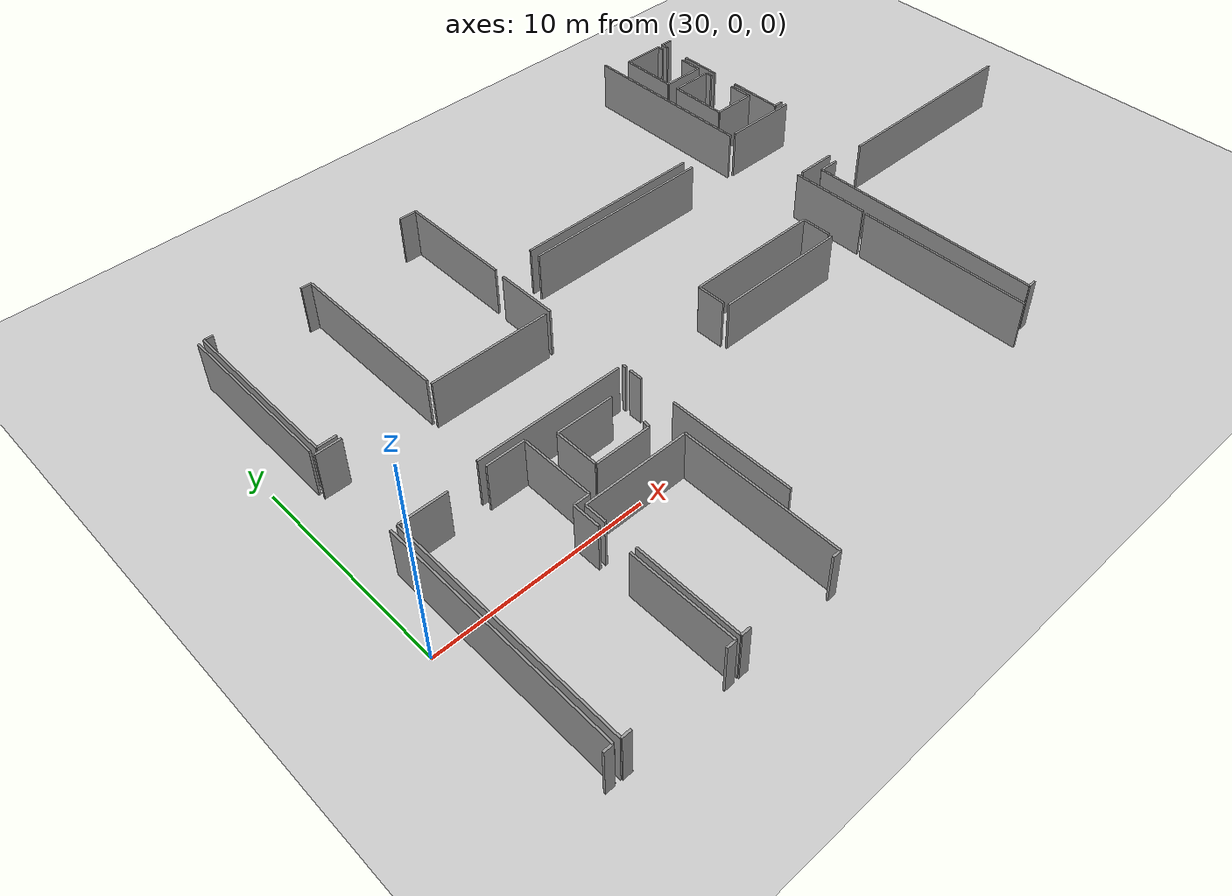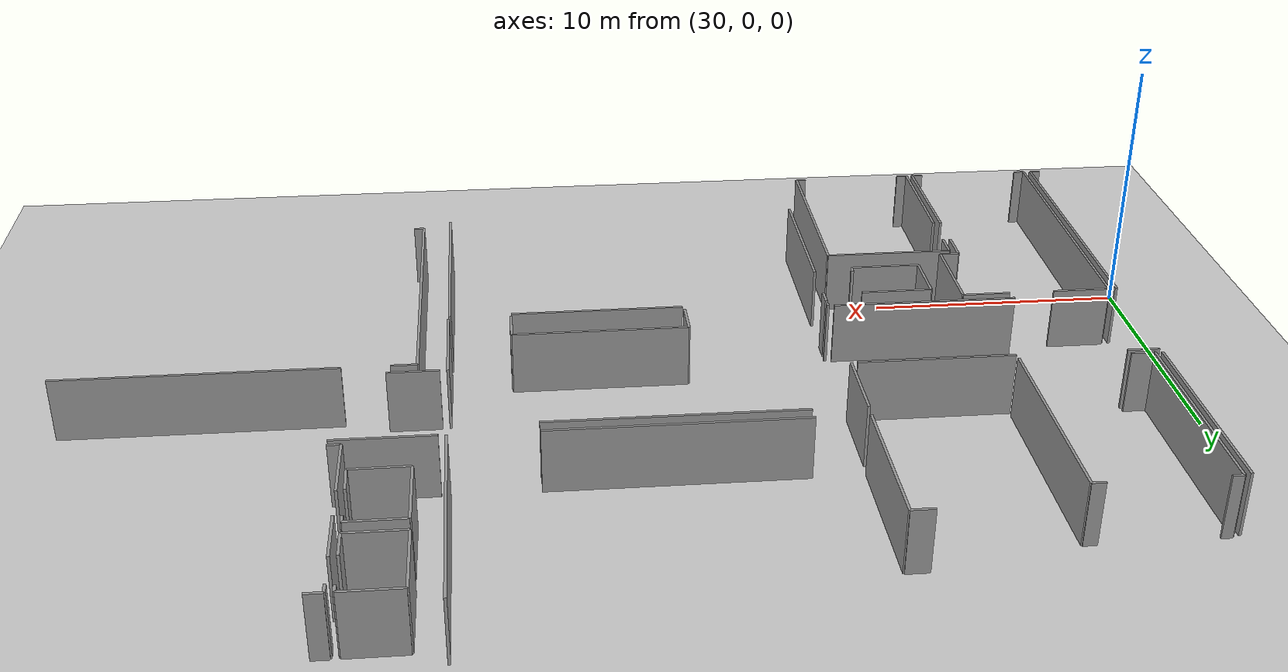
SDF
<sdf version="1.6">
 <world name="default">
  <model name="ground_plane">
   <static>1</static>
   <link name="link">
    <collision name="collision">
     <geometry><plane><normal>0 0 1</normal><size>100 100</size></plane></geometry>
     <surface><friction><ode><mu>100</mu><mu2>50</mu2></ode></friction></surface>
    </collision>
    <visual name="visual">
     <cast_shadows>0</cast_shadows>
     <geometry><plane><normal>0 0 1</normal><size>100 100</size></plane></geometry>
     <material>
      <script><uri>file://media/materials/scripts/gazebo.material</uri><name>Gazebo/Grey</name></script>
     </material>
    </visual>
   </link>
  </model>
  <model name="50037765_PLAN3">
   <static>1</static>
   <link name="Wall_161">
    <collision name="Wall_161_Collision">
     <geometry><box><size>5.92543639472 0.1 2.5</size></box></geometry>
     <pose>2.96271819736 0 1.25 0 0 0</pose>
    </collision>
    <visual name="Wall_161_Visual">
     <pose>2.96271819736 0 1.25 0 0 0</pose>
     <geometry><box><size>5.92543639472 0.1 2.5</size></box></geometry>
     <material>
      <script><uri>file://media/materials/scripts/gazebo.material</uri><name>Gazebo/Grey</name></script>
      <ambient>1 1 1 1</ambient>
     </material>
    </visual>
    <pose>178.511218855 -12.5559926034 0 0 0 3.14159265359</pose>
   </link>
   <link name="Wall_162">
    <collision name="Wall_162_Collision">
     <geometry><box><size>1.2131995501 0.1 2.5</size></box></geometry>
     <pose>0.606599775051 0 1.25 0 0 0</pose>
    </collision>
    <visual name="Wall_162_Visual">
     <pose>0.606599775051 0 1.25 0 0 0</pose>
     <geometry><box><size>1.2131995501 0.1 2.5</size></box></geometry>
     <material>
      <script><uri>file://media/materials/scripts/gazebo.material</uri><name>Gazebo/Grey</name></script>
      <ambient>1 1 1 1</ambient>
     </material>
    </visual>
    <pose>168.367416709 -12.5559926034 0 0 0 3.14159265359</pose>
   </link>
   <link name="Wall_183">
    <collision name="Wall_183_Collision">
     <geometry><box><size>7.17549244671 0.1 2.5</size></box></geometry>
     <pose>3.58774622336 0 1.25 0 0 0</pose>
    </collision>
    <visual name="Wall_183_Visual">
     <pose>3.58774622336 0 1.25 0 0 0</pose>
     <geometry><box><size>7.17549244671 0.1 2.5</size></box></geometry>
     <material>
      <script><uri>file://media/materials/scripts/gazebo.material</uri><name>Gazebo/Grey</name></script>
      <ambient>1 1 1 1</ambient>
     </material>
    </visual>
    <pose>171.335726859 -16.9823789946 0 0 0 -0.000354233070553</pose>
   </link>
   <link name="Wall_238">
    <collision name="Wall_238_Collision">
     <geometry><box><size>8.05820728804 0.1 2.5</size></box></geometry>
     <pose>4.02910364402 0 1.25 0 0 0</pose>
    </collision>
    <visual name="Wall_238_Visual">
     <pose>4.02910364402 0 1.25 0 0 0</pose>
     <geometry><box><size>8.05820728804 0.1 2.5</size></box></geometry>
     <material>
      <script><uri>file://media/materials/scripts/gazebo.material</uri><name>Gazebo/Grey</name></script>
      <ambient>1 1 1 1</ambient>
     </material>
    </visual>
    <pose>167.136170402 -4.22355101704 0 0 0 -1.57060706907</pose>
   </link>
   <link name="Wall_239">
    <collision name="Wall_239_Collision">
     <geometry><box><size>0.903354536154 0.1 2.5</size></box></geometry>
     <pose>0.451677268077 0 1.25 0 0 0</pose>
    </collision>
    <visual name="Wall_239_Visual">
     <pose>0.451677268077 0 1.25 0 0 0</pose>
     <geometry><box><size>0.903354536154 0.1 2.5</size></box></geometry>
     <material>
      <script><uri>file://media/materials/scripts/gazebo.material</uri><name>Gazebo/Grey</name></script>
      <ambient>1 1 1 1</ambient>
     </material>
    </visual>
    <pose>168.319630931 -12.3059306471 0 0 0 3.14159265359</pose>
   </link>
   <link name="Wall_240">
    <collision name="Wall_240_Collision">
     <geometry><box><size>8.14495866403 0.1 2.5</size></box></geometry>
     <pose>4.07247933202 0 1.25 0 0 0</pose>
    </collision>
    <visual name="Wall_240_Visual">
     <pose>4.07247933202 0 1.25 0 0 0</pose>
     <geometry><box><size>8.14495866403 0.1 2.5</size></box></geometry>
     <material>
      <script><uri>file://media/materials/scripts/gazebo.material</uri><name>Gazebo/Grey</name></script>
      <ambient>1 1 1 1</ambient>
     </material>
    </visual>
    <pose>167.416276395 -12.3059306471 0 0 0 1.57079632679</pose>
   </link>
   <link name="Wall_241">
    <collision name="Wall_241_Collision">
     <geometry><box><size>0.413550318042 0.1 2.5</size></box></geometry>
     <pose>0.206775159021 0 1.25 0 0 0</pose>
    </collision>
    <visual name="Wall_241_Visual">
     <pose>0.206775159021 0 1.25 0 0 0</pose>
     <geometry><box><size>0.413550318042 0.1 2.5</size></box></geometry>
     <material>
      <script><uri>file://media/materials/scripts/gazebo.material</uri><name>Gazebo/Grey</name></script>
      <ambient>1 1 1 1</ambient>
     </material>
    </visual>
    <pose>167.416276395 -4.16097198305 0 0 0 0.0</pose>
   </link>
   <link name="Wall_242">
    <collision name="Wall_242_Collision">
     <geometry><box><size>0.516493083136 0.1 2.5</size></box></geometry>
     <pose>0.258246541568 0 1.25 0 0 0</pose>
    </collision>
    <visual name="Wall_242_Visual">
     <pose>0.258246541568 0 1.25 0 0 0</pose>
     <geometry><box><size>0.516493083136 0.1 2.5</size></box></geometry>
     <material>
      <script><uri>file://media/materials/scripts/gazebo.material</uri><name>Gazebo/Grey</name></script>
      <ambient>1 1 1 1</ambient>
     </material>
    </visual>
    <pose>172.049717543 -4.16097198305 0 0 0 0.0</pose>
   </link>
   <link name="Wall_243">
    <collision name="Wall_243_Collision">
     <geometry><box><size>8.1449593343 0.1 2.5</size></box></geometry>
     <pose>4.07247966715 0 1.25 0 0 0</pose>
    </collision>
    <visual name="Wall_243_Visual">
     <pose>4.07247966715 0 1.25 0 0 0</pose>
     <geometry><box><size>8.1449593343 0.1 2.5</size></box></geometry>
     <material>
      <script><uri>file://media/materials/scripts/gazebo.material</uri><name>Gazebo/Grey</name></script>
      <ambient>1 1 1 1</ambient>
     </material>
    </visual>
    <pose>172.566210626 -4.16097198305 0 0 0 -1.57120201768</pose>
   </link>
   <link name="Wall_244">
    <collision name="Wall_244_Collision">
     <geometry><box><size>0.459048478417 0.1 2.5</size></box></geometry>
     <pose>0.229524239208 0 1.25 0 0 0</pose>
    </collision>
    <visual name="Wall_244_Visual">
     <pose>0.229524239208 0 1.25 0 0 0</pose>
     <geometry><box><size>0.459048478417 0.1 2.5</size></box></geometry>
     <material>
      <script><uri>file://media/materials/scripts/gazebo.material</uri><name>Gazebo/Grey</name></script>
      <ambient>1 1 1 1</ambient>
     </material>
    </visual>
    <pose>172.585528281 -29.0154986052 0 0 0 3.14159265359</pose>
   </link>
   <link name="Wall_245">
    <collision name="Wall_245_Collision">
     <geometry><box><size>0.439476644066 0.1 2.5</size></box></geometry>
     <pose>0.219738322033 0 1.25 0 0 0</pose>
    </collision>
    <visual name="Wall_245_Visual">
     <pose>0.219738322033 0 1.25 0 0 0</pose>
     <geometry><box><size>0.439476644066 0.1 2.5</size></box></geometry>
     <material>
      <script><uri>file://media/materials/scripts/gazebo.material</uri><name>Gazebo/Grey</name></script>
      <ambient>1 1 1 1</ambient>
     </material>
    </visual>
    <pose>167.851940344 -29.0154986052 0 0 0 3.14159265359</pose>
   </link>
   <link name="Wall_246">
    <collision name="Wall_246_Collision">
     <geometry><box><size>11.6129606212 0.1 2.5</size></box></geometry>
     <pose>5.80648031061 0 1.25 0 0 0</pose>
    </collision>
    <visual name="Wall_246_Visual">
     <pose>5.80648031061 0 1.25 0 0 0</pose>
     <geometry><box><size>11.6129606212 0.1 2.5</size></box></geometry>
     <material>
      <script><uri>file://media/materials/scripts/gazebo.material</uri><name>Gazebo/Grey</name></script>
      <ambient>1 1 1 1</ambient>
     </material>
    </visual>
    <pose>167.4124637 -29.0154986052 0 0 0 1.57079632679</pose>
   </link>
   <link name="Wall_247">
    <collision name="Wall_247_Collision">
     <geometry><box><size>2.24161048237 0.1 2.5</size></box></geometry>
     <pose>1.12080524118 0 1.25 0 0 0</pose>
    </collision>
    <visual name="Wall_247_Visual">
     <pose>1.12080524118 0 1.25 0 0 0</pose>
     <geometry><box><size>2.24161048237 0.1 2.5</size></box></geometry>
     <material>
      <script><uri>file://media/materials/scripts/gazebo.material</uri><name>Gazebo/Grey</name></script>
      <ambient>1 1 1 1</ambient>
     </material>
    </visual>
    <pose>167.4124637 -17.402537984 0 0 0 0.0</pose>
   </link>
   <link name="Wall_248">
    <collision name="Wall_248_Collision">
     <geometry><box><size>1.87177906703 0.1 2.5</size></box></geometry>
     <pose>0.935889533517 0 1.25 0 0 0</pose>
    </collision>
    <visual name="Wall_248_Visual">
     <pose>0.935889533517 0 1.25 0 0 0</pose>
     <geometry><box><size>1.87177906703 0.1 2.5</size></box></geometry>
     <material>
      <script><uri>file://media/materials/scripts/gazebo.material</uri><name>Gazebo/Grey</name></script>
      <ambient>1 1 1 1</ambient>
     </material>
    </visual>
    <pose>171.421639586 -17.402537984 0 0 0 0.0</pose>
   </link>
   <link name="Wall_249">
    <collision name="Wall_249_Collision">
     <geometry><box><size>3.63883611131 0.1 2.5</size></box></geometry>
     <pose>1.81941805565 0 1.25 0 0 0</pose>
    </collision>
    <visual name="Wall_249_Visual">
     <pose>1.81941805565 0 1.25 0 0 0</pose>
     <geometry><box><size>3.63883611131 0.1 2.5</size></box></geometry>
     <material>
      <script><uri>file://media/materials/scripts/gazebo.material</uri><name>Gazebo/Grey</name></script>
      <ambient>1 1 1 1</ambient>
     </material>
    </visual>
    <pose>173.293418653 -17.402537984 0 0 0 -1.57079632679</pose>
   </link>
   <link name="Wall_250">
    <collision name="Wall_250_Collision">
     <geometry><box><size>0.758217946355 0.1 2.5</size></box></geometry>
     <pose>0.379108973178 0 1.25 0 0 0</pose>
    </collision>
    <visual name="Wall_250_Visual">
     <pose>0.379108973178 0 1.25 0 0 0</pose>
     <geometry><box><size>0.758217946355 0.1 2.5</size></box></geometry>
     <material>
      <script><uri>file://media/materials/scripts/gazebo.material</uri><name>Gazebo/Grey</name></script>
      <ambient>1 1 1 1</ambient>
     </material>
    </visual>
    <pose>173.293418653 -21.0413740953 0 0 0 3.14159265359</pose>
   </link>
   <link name="Wall_251">
    <collision name="Wall_251_Collision">
     <geometry><box><size>1.34740641422 0.1 2.5</size></box></geometry>
     <pose>0.673703207112 0 1.25 0 0 0</pose>
    </collision>
    <visual name="Wall_251_Visual">
     <pose>0.673703207112 0 1.25 0 0 0</pose>
     <geometry><box><size>1.34740641422 0.1 2.5</size></box></geometry>
     <material>
      <script><uri>file://media/materials/scripts/gazebo.material</uri><name>Gazebo/Grey</name></script>
      <ambient>1 1 1 1</ambient>
     </material>
    </visual>
    <pose>172.535200707 -21.0413740953 0 0 0 -1.57079632679</pose>
   </link>
   <link name="Wall_252">
    <collision name="Wall_252_Collision">
     <geometry><box><size>5.03072153357 0.1 2.5</size></box></geometry>
     <pose>2.51536076679 0 1.25 0 0 0</pose>
    </collision>
    <visual name="Wall_252_Visual">
     <pose>2.51536076679 0 1.25 0 0 0</pose>
     <geometry><box><size>5.03072153357 0.1 2.5</size></box></geometry>
     <material>
      <script><uri>file://media/materials/scripts/gazebo.material</uri><name>Gazebo/Grey</name></script>
      <ambient>1 1 1 1</ambient>
     </material>
    </visual>
    <pose>172.535200707 -23.9850288176 0 0 0 -1.56079211304</pose>
   </link>
   <link name="Wall_253">
    <collision name="Wall_253_Collision">
     <geometry><box><size>5.03072153357 0.1 2.5</size></box></geometry>
     <pose>2.51536076679 0 1.25 0 0 0</pose>
    </collision>
    <visual name="Wall_253_Visual">
     <pose>2.51536076679 0 1.25 0 0 0</pose>
     <geometry><box><size>5.03072153357 0.1 2.5</size></box></geometry>
     <material>
      <script><uri>file://media/materials/scripts/gazebo.material</uri><name>Gazebo/Grey</name></script>
      <ambient>1 1 1 1</ambient>
     </material>
    </visual>
    <pose>172.535200707 -23.9850288176 0 0 0 -1.56079211304</pose>
   </link>
   <link name="Wall_254">
    <collision name="Wall_254_Collision">
     <geometry><box><size>0.404908209368 0.1 2.5</size></box></geometry>
     <pose>0.202454104684 0 1.25 0 0 0</pose>
    </collision>
    <visual name="Wall_254_Visual">
     <pose>0.202454104684 0 1.25 0 0 0</pose>
     <geometry><box><size>0.404908209368 0.1 2.5</size></box></geometry>
     <material>
      <script><uri>file://media/materials/scripts/gazebo.material</uri><name>Gazebo/Grey</name></script>
      <ambient>1 1 1 1</ambient>
     </material>
    </visual>
    <pose>177.883140898 -28.9997394658 0 0 0 3.14159265359</pose>
   </link>
   <link name="Wall_255">
    <collision name="Wall_255_Collision">
     <geometry><box><size>0.450406369742 0.1 2.5</size></box></geometry>
     <pose>0.225203184871 0 1.25 0 0 0</pose>
    </collision>
    <visual name="Wall_255_Visual">
     <pose>0.225203184871 0 1.25 0 0 0</pose>
     <geometry><box><size>0.450406369742 0.1 2.5</size></box></geometry>
     <material>
      <script><uri>file://media/materials/scripts/gazebo.material</uri><name>Gazebo/Grey</name></script>
      <ambient>1 1 1 1</ambient>
     </material>
    </visual>
    <pose>173.291385216 -28.9997394658 0 0 0 3.14159265359</pose>
   </link>
   <link name="Wall_256">
    <collision name="Wall_256_Collision">
     <geometry><box><size>5.01471064822 0.1 2.5</size></box></geometry>
     <pose>2.50735532411 0 1.25 0 0 0</pose>
    </collision>
    <visual name="Wall_256_Visual">
     <pose>2.50735532411 0 1.25 0 0 0</pose>
     <geometry><box><size>5.01471064822 0.1 2.5</size></box></geometry>
     <material>
      <script><uri>file://media/materials/scripts/gazebo.material</uri><name>Gazebo/Grey</name></script>
      <ambient>1 1 1 1</ambient>
     </material>
    </visual>
    <pose>172.840978846 -28.9997394658 0 0 0 1.57079632679</pose>
   </link>
   <link name="Wall_257">
    <collision name="Wall_257_Collision">
     <geometry><box><size>1.07289237397 0.1 2.5</size></box></geometry>
     <pose>0.536446186987 0 1.25 0 0 0</pose>
    </collision>
    <visual name="Wall_257_Visual">
     <pose>0.536446186987 0 1.25 0 0 0</pose>
     <geometry><box><size>1.07289237397 0.1 2.5</size></box></geometry>
     <material>
      <script><uri>file://media/materials/scripts/gazebo.material</uri><name>Gazebo/Grey</name></script>
      <ambient>1 1 1 1</ambient>
     </material>
    </visual>
    <pose>172.840978846 -22.3953891808 0 0 0 1.57079632679</pose>
   </link>
   <link name="Wall_258">
    <collision name="Wall_258_Collision">
     <geometry><box><size>5.07825556495 0.1 2.5</size></box></geometry>
     <pose>2.53912778247 0 1.25 0 0 0</pose>
    </collision>
    <visual name="Wall_258_Visual">
     <pose>2.53912778247 0 1.25 0 0 0</pose>
     <geometry><box><size>5.07825556495 0.1 2.5</size></box></geometry>
     <material>
      <script><uri>file://media/materials/scripts/gazebo.material</uri><name>Gazebo/Grey</name></script>
      <ambient>1 1 1 1</ambient>
     </material>
    </visual>
    <pose>172.840978846 -21.3224968069 0 0 0 0.0</pose>
   </link>
   <link name="Wall_259">
    <collision name="Wall_259_Collision">
     <geometry><box><size>7.67732750288 0.1 2.5</size></box></geometry>
     <pose>3.83866375144 0 1.25 0 0 0</pose>
    </collision>
    <visual name="Wall_259_Visual">
     <pose>3.83866375144 0 1.25 0 0 0</pose>
     <geometry><box><size>7.67732750288 0.1 2.5</size></box></geometry>
     <material>
      <script><uri>file://media/materials/scripts/gazebo.material</uri><name>Gazebo/Grey</name></script>
      <ambient>1 1 1 1</ambient>
     </material>
    </visual>
    <pose>177.919234411 -21.3224968069 0 0 0 -1.57549765622</pose>
   </link>
   <link name="Wall_260">
    <collision name="Wall_260_Collision">
     <geometry><box><size>0.430580355724 0.1 2.5</size></box></geometry>
     <pose>0.215290177862 0 1.25 0 0 0</pose>
    </collision>
    <visual name="Wall_260_Visual">
     <pose>0.215290177862 0 1.25 0 0 0</pose>
     <geometry><box><size>0.430580355724 0.1 2.5</size></box></geometry>
     <material>
      <script><uri>file://media/materials/scripts/gazebo.material</uri><name>Gazebo/Grey</name></script>
      <ambient>1 1 1 1</ambient>
     </material>
    </visual>
    <pose>167.106685561 -28.9865221232 0 0 0 3.14159265359</pose>
   </link>
   <link name="Wall_266">
    <collision name="Wall_266_Collision">
     <geometry><box><size>11.5573025442 0.1 2.5</size></box></geometry>
     <pose>5.77865127209 0 1.25 0 0 0</pose>
    </collision>
    <visual name="Wall_266_Visual">
     <pose>5.77865127209 0 1.25 0 0 0</pose>
     <geometry><box><size>11.5573025442 0.1 2.5</size></box></geometry>
     <material>
      <script><uri>file://media/materials/scripts/gazebo.material</uri><name>Gazebo/Grey</name></script>
      <ambient>1 1 1 1</ambient>
     </material>
    </visual>
    <pose>167.093722398 -17.429226849 0 0 0 -1.56967468395</pose>
   </link>
   <link name="Wall_296">
    <collision name="Wall_296_Collision">
     <geometry><box><size>1.44058868011 0.1 2.5</size></box></geometry>
     <pose>0.720294340054 0 1.25 0 0 0</pose>
    </collision>
    <visual name="Wall_296_Visual">
     <pose>0.720294340054 0 1.25 0 0 0</pose>
     <geometry><box><size>1.44058868011 0.1 2.5</size></box></geometry>
     <material>
      <script><uri>file://media/materials/scripts/gazebo.material</uri><name>Gazebo/Grey</name></script>
      <ambient>1 1 1 1</ambient>
     </material>
    </visual>
    <pose>191.051172721 -17.2091072575 0 0 0 1.57079632679</pose>
   </link>
   <link name="Wall_297">
    <collision name="Wall_297_Collision">
     <geometry><box><size>6.7149184401 0.1 2.5</size></box></geometry>
     <pose>3.35745922005 0 1.25 0 0 0</pose>
    </collision>
    <visual name="Wall_297_Visual">
     <pose>3.35745922005 0 1.25 0 0 0</pose>
     <geometry><box><size>6.7149184401 0.1 2.5</size></box></geometry>
     <material>
      <script><uri>file://media/materials/scripts/gazebo.material</uri><name>Gazebo/Grey</name></script>
      <ambient>1 1 1 1</ambient>
     </material>
    </visual>
    <pose>191.051172721 -15.7685185774 0 0 0 3.14159265359</pose>
   </link>
   <link name="Wall_298">
    <collision name="Wall_298_Collision">
     <geometry><box><size>1.41237473708 0.1 2.5</size></box></geometry>
     <pose>0.706187368541 0 1.25 0 0 0</pose>
    </collision>
    <visual name="Wall_298_Visual">
     <pose>0.706187368541 0 1.25 0 0 0</pose>
     <geometry><box><size>1.41237473708 0.1 2.5</size></box></geometry>
     <material>
      <script><uri>file://media/materials/scripts/gazebo.material</uri><name>Gazebo/Grey</name></script>
      <ambient>1 1 1 1</ambient>
     </material>
    </visual>
    <pose>184.336254281 -15.7685185774 0 0 0 -1.57079632679</pose>
   </link>
   <link name="Wall_299">
    <collision name="Wall_299_Collision">
     <geometry><box><size>0.198514319847 0.1 2.5</size></box></geometry>
     <pose>0.0992571599235 0 1.25 0 0 0</pose>
    </collision>
    <visual name="Wall_299_Visual">
     <pose>0.0992571599235 0 1.25 0 0 0</pose>
     <geometry><box><size>0.198514319847 0.1 2.5</size></box></geometry>
     <material>
      <script><uri>file://media/materials/scripts/gazebo.material</uri><name>Gazebo/Grey</name></script>
      <ambient>1 1 1 1</ambient>
     </material>
    </visual>
    <pose>178.747605945 -17.1808933144 0 0 0 1.57079632679</pose>
   </link>
   <link name="Wall_300">
    <collision name="Wall_300_Collision">
     <geometry><box><size>3.07986960583 0.1 2.5</size></box></geometry>
     <pose>1.53993480292 0 1.25 0 0 0</pose>
    </collision>
    <visual name="Wall_300_Visual">
     <pose>1.53993480292 0 1.25 0 0 0</pose>
     <geometry><box><size>3.07986960583 0.1 2.5</size></box></geometry>
     <material>
      <script><uri>file://media/materials/scripts/gazebo.material</uri><name>Gazebo/Grey</name></script>
      <ambient>1 1 1 1</ambient>
     </material>
    </visual>
    <pose>178.747605945 -12.5550521386 0 0 0 1.57079632679</pose>
   </link>
   <link name="Wall_301">
    <collision name="Wall_301_Collision">
     <geometry><box><size>9.50326938597 0.1 2.5</size></box></geometry>
     <pose>4.75163469298 0 1.25 0 0 0</pose>
    </collision>
    <visual name="Wall_301_Visual">
     <pose>4.75163469298 0 1.25 0 0 0</pose>
     <geometry><box><size>9.50326938597 0.1 2.5</size></box></geometry>
     <material>
      <script><uri>file://media/materials/scripts/gazebo.material</uri><name>Gazebo/Grey</name></script>
      <ambient>1 1 1 1</ambient>
     </material>
    </visual>
    <pose>180.751812619 -9.47518253277 0 0 0 0.0</pose>
   </link>
   <link name="Wall_302">
    <collision name="Wall_302_Collision">
     <geometry><box><size>3.89224908814 0.1 2.5</size></box></geometry>
     <pose>1.94612454407 0 1.25 0 0 0</pose>
    </collision>
    <visual name="Wall_302_Visual">
     <pose>1.94612454407 0 1.25 0 0 0</pose>
     <geometry><box><size>3.89224908814 0.1 2.5</size></box></geometry>
     <material>
      <script><uri>file://media/materials/scripts/gazebo.material</uri><name>Gazebo/Grey</name></script>
      <ambient>1 1 1 1</ambient>
     </material>
    </visual>
    <pose>193.420381397 -13.3169048542 0 0 0 -1.56589850273</pose>
   </link>
   <link name="Wall_303">
    <collision name="Wall_303_Collision">
     <geometry><box><size>9.50962387764 0.1 2.5</size></box></geometry>
     <pose>4.75481193882 0 1.25 0 0 0</pose>
    </collision>
    <visual name="Wall_303_Visual">
     <pose>4.75481193882 0 1.25 0 0 0</pose>
     <geometry><box><size>9.50962387764 0.1 2.5</size></box></geometry>
     <material>
      <script><uri>file://media/materials/scripts/gazebo.material</uri><name>Gazebo/Grey</name></script>
      <ambient>1 1 1 1</ambient>
     </material>
    </visual>
    <pose>190.240085404 -8.93014507304 0 0 0 3.14159265359</pose>
   </link>
   <link name="Wall_304">
    <collision name="Wall_304_Collision">
     <geometry><box><size>5.73858892158 0.1 2.5</size></box></geometry>
     <pose>2.86929446079 0 1.25 0 0 0</pose>
    </collision>
    <visual name="Wall_304_Visual">
     <pose>2.86929446079 0 1.25 0 0 0</pose>
     <geometry><box><size>5.73858892158 0.1 2.5</size></box></geometry>
     <material>
      <script><uri>file://media/materials/scripts/gazebo.material</uri><name>Gazebo/Grey</name></script>
      <ambient>1 1 1 1</ambient>
     </material>
    </visual>
    <pose>178.785732895 -8.93014507304 0 0 0 1.57079632679</pose>
   </link>
   <link name="Wall_305">
    <collision name="Wall_305_Collision">
     <geometry><box><size>0.870819538791 0.1 2.5</size></box></geometry>
     <pose>0.435409769396 0 1.25 0 0 0</pose>
    </collision>
    <visual name="Wall_305_Visual">
     <pose>0.435409769396 0 1.25 0 0 0</pose>
     <geometry><box><size>0.870819538791 0.1 2.5</size></box></geometry>
     <material>
      <script><uri>file://media/materials/scripts/gazebo.material</uri><name>Gazebo/Grey</name></script>
      <ambient>1 1 1 1</ambient>
     </material>
    </visual>
    <pose>178.785732895 -3.19155615147 0 0 0 3.14159265359</pose>
   </link>
   <link name="Wall_306">
    <collision name="Wall_306_Collision">
     <geometry><box><size>8.93028545851 0.1 2.5</size></box></geometry>
     <pose>4.46514272925 0 1.25 0 0 0</pose>
    </collision>
    <visual name="Wall_306_Visual">
     <pose>4.46514272925 0 1.25 0 0 0</pose>
     <geometry><box><size>8.93028545851 0.1 2.5</size></box></geometry>
     <material>
      <script><uri>file://media/materials/scripts/gazebo.material</uri><name>Gazebo/Grey</name></script>
      <ambient>1 1 1 1</ambient>
     </material>
    </visual>
    <pose>193.39496343 -0.0 0 0 0 -1.56518915365</pose>
   </link>
   <link name="Wall_307">
    <collision name="Wall_307_Collision">
     <geometry><box><size>6.06574357084 0.1 2.5</size></box></geometry>
     <pose>3.03287178542 0 1.25 0 0 0</pose>
    </collision>
    <visual name="Wall_307_Visual">
     <pose>3.03287178542 0 1.25 0 0 0</pose>
     <geometry><box><size>6.06574357084 0.1 2.5</size></box></geometry>
     <material>
      <script><uri>file://media/materials/scripts/gazebo.material</uri><name>Gazebo/Grey</name></script>
      <ambient>1 1 1 1</ambient>
     </material>
    </visual>
    <pose>178.742522352 -25.9287407304 0 0 0 1.57079632679</pose>
   </link>
   <link name="Wall_308">
    <collision name="Wall_308_Collision">
     <geometry><box><size>0.670271781609 0.1 2.5</size></box></geometry>
     <pose>0.335135890804 0 1.25 0 0 0</pose>
    </collision>
    <visual name="Wall_308_Visual">
     <pose>0.335135890804 0 1.25 0 0 0</pose>
     <geometry><box><size>0.670271781609 0.1 2.5</size></box></geometry>
     <material>
      <script><uri>file://media/materials/scripts/gazebo.material</uri><name>Gazebo/Grey</name></script>
      <ambient>1 1 1 1</ambient>
     </material>
    </visual>
    <pose>178.742522352 -18.0728097656 0 0 0 1.57079632679</pose>
   </link>
   <link name="Wall_309">
    <collision name="Wall_309_Collision">
     <geometry><box><size>6.63078497036 0.1 2.5</size></box></geometry>
     <pose>3.31539248518 0 1.25 0 0 0</pose>
    </collision>
    <visual name="Wall_309_Visual">
     <pose>3.31539248518 0 1.25 0 0 0</pose>
     <geometry><box><size>6.63078497036 0.1 2.5</size></box></geometry>
     <material>
      <script><uri>file://media/materials/scripts/gazebo.material</uri><name>Gazebo/Grey</name></script>
      <ambient>1 1 1 1</ambient>
     </material>
    </visual>
    <pose>184.403866073 -17.402537984 0 0 0 0.0</pose>
   </link>
   <link name="Wall_310">
    <collision name="Wall_310_Collision">
     <geometry><box><size>8.52625198487 0.1 2.5</size></box></geometry>
     <pose>4.26312599243 0 1.25 0 0 0</pose>
    </collision>
    <visual name="Wall_310_Visual">
     <pose>4.26312599243 0 1.25 0 0 0</pose>
     <geometry><box><size>8.52625198487 0.1 2.5</size></box></geometry>
     <material>
      <script><uri>file://media/materials/scripts/gazebo.material</uri><name>Gazebo/Grey</name></script>
      <ambient>1 1 1 1</ambient>
     </material>
    </visual>
    <pose>193.385304603 -17.402537984 0 0 0 -1.56739781853</pose>
   </link>
   <link name="Wall_311">
    <collision name="Wall_311_Collision">
     <geometry><box><size>2.72963544281 0.1 2.5</size></box></geometry>
     <pose>1.36481772141 0 1.25 0 0 0</pose>
    </collision>
    <visual name="Wall_311_Visual">
     <pose>1.36481772141 0 1.25 0 0 0</pose>
     <geometry><box><size>2.72963544281 0.1 2.5</size></box></geometry>
     <material>
      <script><uri>file://media/materials/scripts/gazebo.material</uri><name>Gazebo/Grey</name></script>
      <ambient>1 1 1 1</ambient>
     </material>
    </visual>
    <pose>177.162795722 -20.1410697151 0 0 0 3.14159265359</pose>
   </link>
   <link name="Wall_312">
    <collision name="Wall_312_Collision">
     <geometry><box><size>2.16713583997 0.1 2.5</size></box></geometry>
     <pose>1.08356791998 0 1.25 0 0 0</pose>
    </collision>
    <visual name="Wall_312_Visual">
     <pose>1.08356791998 0 1.25 0 0 0</pose>
     <geometry><box><size>2.16713583997 0.1 2.5</size></box></geometry>
     <material>
      <script><uri>file://media/materials/scripts/gazebo.material</uri><name>Gazebo/Grey</name></script>
      <ambient>1 1 1 1</ambient>
     </material>
    </visual>
    <pose>174.433160279 -20.1410697151 0 0 0 1.57079632679</pose>
   </link>
   <link name="Wall_313">
    <collision name="Wall_313_Collision">
     <geometry><box><size>2.77462524385 0.1 2.5</size></box></geometry>
     <pose>1.38731262193 0 1.25 0 0 0</pose>
    </collision>
    <visual name="Wall_313_Visual">
     <pose>1.38731262193 0 1.25 0 0 0</pose>
     <geometry><box><size>2.77462524385 0.1 2.5</size></box></geometry>
     <material>
      <script><uri>file://media/materials/scripts/gazebo.material</uri><name>Gazebo/Grey</name></script>
      <ambient>1 1 1 1</ambient>
     </material>
    </visual>
    <pose>174.433160279 -17.9739338752 0 0 0 0.0</pose>
   </link>
   <link name="Wall_314">
    <collision name="Wall_314_Collision">
     <geometry><box><size>0.324166082771 0.1 2.5</size></box></geometry>
     <pose>0.162083041386 0 1.25 0 0 0</pose>
    </collision>
    <visual name="Wall_314_Visual">
     <pose>0.162083041386 0 1.25 0 0 0</pose>
     <geometry><box><size>0.324166082771 0.1 2.5</size></box></geometry>
     <material>
      <script><uri>file://media/materials/scripts/gazebo.material</uri><name>Gazebo/Grey</name></script>
      <ambient>1 1 1 1</ambient>
     </material>
    </visual>
    <pose>177.207785523 -19.8200407958 0 0 0 -1.7100320437</pose>
   </link>
   <link name="Wall_316">
    <collision name="Wall_316_Collision">
     <geometry><box><size>1.94625370943 0.1 2.5</size></box></geometry>
     <pose>0.973126854717 0 1.25 0 0 0</pose>
    </collision>
    <visual name="Wall_316_Visual">
     <pose>0.973126854717 0 1.25 0 0 0</pose>
     <geometry><box><size>1.94625370943 0.1 2.5</size></box></geometry>
     <material>
      <script><uri>file://media/materials/scripts/gazebo.material</uri><name>Gazebo/Grey</name></script>
      <ambient>1 1 1 1</ambient>
     </material>
    </visual>
    <pose>195.663771137 -13.3366800323 0 0 0 3.14159265359</pose>
   </link>
   <link name="Wall_317">
    <collision name="Wall_317_Collision">
     <geometry><box><size>3.72805317439 0.1 2.5</size></box></geometry>
     <pose>1.86402658719 0 1.25 0 0 0</pose>
    </collision>
    <visual name="Wall_317_Visual">
     <pose>1.86402658719 0 1.25 0 0 0</pose>
     <geometry><box><size>3.72805317439 0.1 2.5</size></box></geometry>
     <material>
      <script><uri>file://media/materials/scripts/gazebo.material</uri><name>Gazebo/Grey</name></script>
      <ambient>1 1 1 1</ambient>
     </material>
    </visual>
    <pose>193.717517427 -8.95706269977 0 0 0 0.0</pose>
   </link>
   <link name="Wall_339">
    <collision name="Wall_339_Collision">
     <geometry><box><size>0.494633631783 0.1 2.5</size></box></geometry>
     <pose>0.247316815891 0 1.25 0 0 0</pose>
    </collision>
    <visual name="Wall_339_Visual">
     <pose>0.247316815891 0 1.25 0 0 0</pose>
     <geometry><box><size>0.494633631783 0.1 2.5</size></box></geometry>
     <material>
      <script><uri>file://media/materials/scripts/gazebo.material</uri><name>Gazebo/Grey</name></script>
      <ambient>1 1 1 1</ambient>
     </material>
    </visual>
    <pose>197.455991968 -8.66107047767 0 0 0 3.14159265359</pose>
   </link>
   <link name="Wall_340">
    <collision name="Wall_340_Collision">
     <geometry><box><size>2.75286746437 0.1 2.5</size></box></geometry>
     <pose>1.37643373218 0 1.25 0 0 0</pose>
    </collision>
    <visual name="Wall_340_Visual">
     <pose>1.37643373218 0 1.25 0 0 0</pose>
     <geometry><box><size>2.75286746437 0.1 2.5</size></box></geometry>
     <material>
      <script><uri>file://media/materials/scripts/gazebo.material</uri><name>Gazebo/Grey</name></script>
      <ambient>1 1 1 1</ambient>
     </material>
    </visual>
    <pose>196.961358336 -8.66107047767 0 0 0 1.57079632679</pose>
   </link>
   <link name="Wall_341">
    <collision name="Wall_341_Collision">
     <geometry><box><size>2.13050854997 0.1 2.5</size></box></geometry>
     <pose>1.06525427498 0 1.25 0 0 0</pose>
    </collision>
    <visual name="Wall_341_Visual">
     <pose>1.06525427498 0 1.25 0 0 0</pose>
     <geometry><box><size>2.13050854997 0.1 2.5</size></box></geometry>
     <material>
      <script><uri>file://media/materials/scripts/gazebo.material</uri><name>Gazebo/Grey</name></script>
      <ambient>1 1 1 1</ambient>
     </material>
    </visual>
    <pose>196.961358336 -4.49282895615 0 0 0 1.57079632679</pose>
   </link>
   <link name="Wall_342">
    <collision name="Wall_342_Collision">
     <geometry><box><size>0.404399850034 0.1 2.5</size></box></geometry>
     <pose>0.202199925017 0 1.25 0 0 0</pose>
    </collision>
    <visual name="Wall_342_Visual">
     <pose>0.202199925017 0 1.25 0 0 0</pose>
     <geometry><box><size>0.404399850034 0.1 2.5</size></box></geometry>
     <material>
      <script><uri>file://media/materials/scripts/gazebo.material</uri><name>Gazebo/Grey</name></script>
      <ambient>1 1 1 1</ambient>
     </material>
    </visual>
    <pose>196.961358336 -0.995621755238 0 0 0 1.57079632679</pose>
   </link>
   <link name="Wall_343">
    <collision name="Wall_343_Collision">
     <geometry><box><size>0.623248543233 0.1 2.5</size></box></geometry>
     <pose>0.311624271616 0 1.25 0 0 0</pose>
    </collision>
    <visual name="Wall_343_Visual">
     <pose>0.311624271616 0 1.25 0 0 0</pose>
     <geometry><box><size>0.623248543233 0.1 2.5</size></box></geometry>
     <material>
      <script><uri>file://media/materials/scripts/gazebo.material</uri><name>Gazebo/Grey</name></script>
      <ambient>1 1 1 1</ambient>
     </material>
    </visual>
    <pose>196.961358336 -0.591221905204 0 0 0 0.0</pose>
   </link>
   <link name="Wall_346">
    <collision name="Wall_346_Collision">
     <geometry><box><size>2.15951044996 0.1 2.5</size></box></geometry>
     <pose>1.07975522498 0 1.25 0 0 0</pose>
    </collision>
    <visual name="Wall_346_Visual">
     <pose>1.07975522498 0 1.25 0 0 0</pose>
     <geometry><box><size>2.15951044996 0.1 2.5</size></box></geometry>
     <material>
      <script><uri>file://media/materials/scripts/gazebo.material</uri><name>Gazebo/Grey</name></script>
      <ambient>1 1 1 1</ambient>
     </material>
    </visual>
    <pose>196.672356055 -3.55465180563 0 0 0 3.14159265359</pose>
   </link>
   <link name="Wall_347">
    <collision name="Wall_347_Collision">
     <geometry><box><size>2.95265268255 0.1 2.5</size></box></geometry>
     <pose>1.47632634127 0 1.25 0 0 0</pose>
    </collision>
    <visual name="Wall_347_Visual">
     <pose>1.47632634127 0 1.25 0 0 0</pose>
     <geometry><box><size>2.95265268255 0.1 2.5</size></box></geometry>
     <material>
      <script><uri>file://media/materials/scripts/gazebo.material</uri><name>Gazebo/Grey</name></script>
      <ambient>1 1 1 1</ambient>
     </material>
    </visual>
    <pose>194.512845605 -3.55465180563 0 0 0 1.57079632679</pose>
   </link>
   <link name="Wall_348">
    <collision name="Wall_348_Collision">
     <geometry><box><size>2.15010580229 0.1 2.5</size></box></geometry>
     <pose>1.07505290114 0 1.25 0 0 0</pose>
    </collision>
    <visual name="Wall_348_Visual">
     <pose>1.07505290114 0 1.25 0 0 0</pose>
     <geometry><box><size>2.15010580229 0.1 2.5</size></box></geometry>
     <material>
      <script><uri>file://media/materials/scripts/gazebo.material</uri><name>Gazebo/Grey</name></script>
      <ambient>1 1 1 1</ambient>
     </material>
    </visual>
    <pose>194.512845605 -0.60199912308 0 0 0 0.0</pose>
   </link>
   <link name="Wall_349">
    <collision name="Wall_349_Collision">
     <geometry><box><size>0.334449605704 0.1 2.5</size></box></geometry>
     <pose>0.167224802852 0 1.25 0 0 0</pose>
    </collision>
    <visual name="Wall_349_Visual">
     <pose>0.167224802852 0 1.25 0 0 0</pose>
     <geometry><box><size>0.334449605704 0.1 2.5</size></box></geometry>
     <material>
      <script><uri>file://media/materials/scripts/gazebo.material</uri><name>Gazebo/Grey</name></script>
      <ambient>1 1 1 1</ambient>
     </material>
    </visual>
    <pose>196.662951407 -0.60199912308 0 0 0 -1.57079632679</pose>
   </link>
   <link name="Wall_350">
    <collision name="Wall_350_Collision">
     <geometry><box><size>1.14669388022 0.1 2.5</size></box></geometry>
     <pose>0.57334694011 0 1.25 0 0 0</pose>
    </collision>
    <visual name="Wall_350_Visual">
     <pose>0.57334694011 0 1.25 0 0 0</pose>
     <geometry><box><size>1.14669388022 0.1 2.5</size></box></geometry>
     <material>
      <script><uri>file://media/materials/scripts/gazebo.material</uri><name>Gazebo/Grey</name></script>
      <ambient>1 1 1 1</ambient>
     </material>
    </visual>
    <pose>196.662951407 -2.40799649232 0 0 0 -1.56259470187</pose>
   </link>
   <link name="Wall_351">
    <collision name="Wall_351_Collision">
     <geometry><box><size>2.16866091797 0.1 2.5</size></box></geometry>
     <pose>1.08433045898 0 1.25 0 0 0</pose>
    </collision>
    <visual name="Wall_351_Visual">
     <pose>1.08433045898 0 1.25 0 0 0</pose>
     <geometry><box><size>2.16866091797 0.1 2.5</size></box></geometry>
     <material>
      <script><uri>file://media/materials/scripts/gazebo.material</uri><name>Gazebo/Grey</name></script>
      <ambient>1 1 1 1</ambient>
     </material>
    </visual>
    <pose>196.705145232 -7.12386810617 0 0 0 3.14159265359</pose>
   </link>
   <link name="Wall_352">
    <collision name="Wall_352_Collision">
     <geometry><box><size>2.96637838456 0.1 2.5</size></box></geometry>
     <pose>1.48318919228 0 1.25 0 0 0</pose>
    </collision>
    <visual name="Wall_352_Visual">
     <pose>1.48318919228 0 1.25 0 0 0</pose>
     <geometry><box><size>2.96637838456 0.1 2.5</size></box></geometry>
     <material>
      <script><uri>file://media/materials/scripts/gazebo.material</uri><name>Gazebo/Grey</name></script>
      <ambient>1 1 1 1</ambient>
     </material>
    </visual>
    <pose>194.536484314 -7.12386810617 0 0 0 1.57079632679</pose>
   </link>
   <link name="Wall_353">
    <collision name="Wall_353_Collision">
     <geometry><box><size>2.13561756127 0.1 2.5</size></box></geometry>
     <pose>1.06780878064 0 1.25 0 0 0</pose>
    </collision>
    <visual name="Wall_353_Visual">
     <pose>1.06780878064 0 1.25 0 0 0</pose>
     <geometry><box><size>2.13561756127 0.1 2.5</size></box></geometry>
     <material>
      <script><uri>file://media/materials/scripts/gazebo.material</uri><name>Gazebo/Grey</name></script>
      <ambient>1 1 1 1</ambient>
     </material>
    </visual>
    <pose>194.536484314 -4.15748972161 0 0 0 0.0</pose>
   </link>
   <link name="Wall_354">
    <collision name="Wall_354_Collision">
     <geometry><box><size>0.340677007543 0.1 2.5</size></box></geometry>
     <pose>0.170338503771 0 1.25 0 0 0</pose>
    </collision>
    <visual name="Wall_354_Visual">
     <pose>0.170338503771 0 1.25 0 0 0</pose>
     <geometry><box><size>0.340677007543 0.1 2.5</size></box></geometry>
     <material>
      <script><uri>file://media/materials/scripts/gazebo.material</uri><name>Gazebo/Grey</name></script>
      <ambient>1 1 1 1</ambient>
     </material>
    </visual>
    <pose>196.672101875 -4.15748972161 0 0 0 -1.57079632679</pose>
   </link>
   <link name="Wall_355">
    <collision name="Wall_355_Collision">
     <geometry><box><size>1.18315949861 0.1 2.5</size></box></geometry>
     <pose>0.591579749304 0 1.25 0 0 0</pose>
    </collision>
    <visual name="Wall_355_Visual">
     <pose>0.591579749304 0 1.25 0 0 0</pose>
     <geometry><box><size>1.18315949861 0.1 2.5</size></box></geometry>
     <material>
      <script><uri>file://media/materials/scripts/gazebo.material</uri><name>Gazebo/Grey</name></script>
      <ambient>1 1 1 1</ambient>
     </material>
    </visual>
    <pose>196.672101875 -5.9411701161 0 0 0 -1.54286462887</pose>
   </link>
   <link name="Wall_359">
    <collision name="Wall_359_Collision">
     <geometry><box><size>0.401349694031 0.1 2.5</size></box></geometry>
     <pose>0.200674847016 0 1.25 0 0 0</pose>
    </collision>
    <visual name="Wall_359_Visual">
     <pose>0.200674847016 0 1.25 0 0 0</pose>
     <geometry><box><size>0.401349694031 0.1 2.5</size></box></geometry>
     <material>
      <script><uri>file://media/materials/scripts/gazebo.material</uri><name>Gazebo/Grey</name></script>
      <ambient>1 1 1 1</ambient>
     </material>
    </visual>
    <pose>194.933258774 -25.4025888199 0 0 0 3.14159265359</pose>
   </link>
   <link name="Wall_360">
    <collision name="Wall_360_Collision">
     <geometry><box><size>11.5661407266 0.1 2.5</size></box></geometry>
     <pose>5.78307036329 0 1.25 0 0 0</pose>
    </collision>
    <visual name="Wall_360_Visual">
     <pose>5.78307036329 0 1.25 0 0 0</pose>
     <geometry><box><size>11.5661407266 0.1 2.5</size></box></geometry>
     <material>
      <script><uri>file://media/materials/scripts/gazebo.material</uri><name>Gazebo/Grey</name></script>
      <ambient>1 1 1 1</ambient>
     </material>
    </visual>
    <pose>194.53190908 -25.4025888199 0 0 0 1.57079632679</pose>
   </link>
   <link name="Wall_361">
    <collision name="Wall_361_Collision">
     <geometry><box><size>0.984183670227 0.1 2.5</size></box></geometry>
     <pose>0.492091835114 0 1.25 0 0 0</pose>
    </collision>
    <visual name="Wall_361_Visual">
     <pose>0.492091835114 0 1.25 0 0 0</pose>
     <geometry><box><size>0.984183670227 0.1 2.5</size></box></geometry>
     <material>
      <script><uri>file://media/materials/scripts/gazebo.material</uri><name>Gazebo/Grey</name></script>
      <ambient>1 1 1 1</ambient>
     </material>
    </visual>
    <pose>194.53190908 -13.8364480933 0 0 0 0.0</pose>
   </link>
   <link name="Wall_362">
    <collision name="Wall_362_Collision">
     <geometry><box><size>10.4821152832 0.1 2.5</size></box></geometry>
     <pose>5.24105764159 0 1.25 0 0 0</pose>
    </collision>
    <visual name="Wall_362_Visual">
     <pose>5.24105764159 0 1.25 0 0 0</pose>
     <geometry><box><size>10.4821152832 0.1 2.5</size></box></geometry>
     <material>
      <script><uri>file://media/materials/scripts/gazebo.material</uri><name>Gazebo/Grey</name></script>
      <ambient>1 1 1 1</ambient>
     </material>
    </visual>
    <pose>197.29382534 -13.8364480933 0 0 0 0.0</pose>
   </link>
   <pose>-135.75 21.1468211655 0 0 0 0</pose>
  </model>
 </world>
</sdf>
